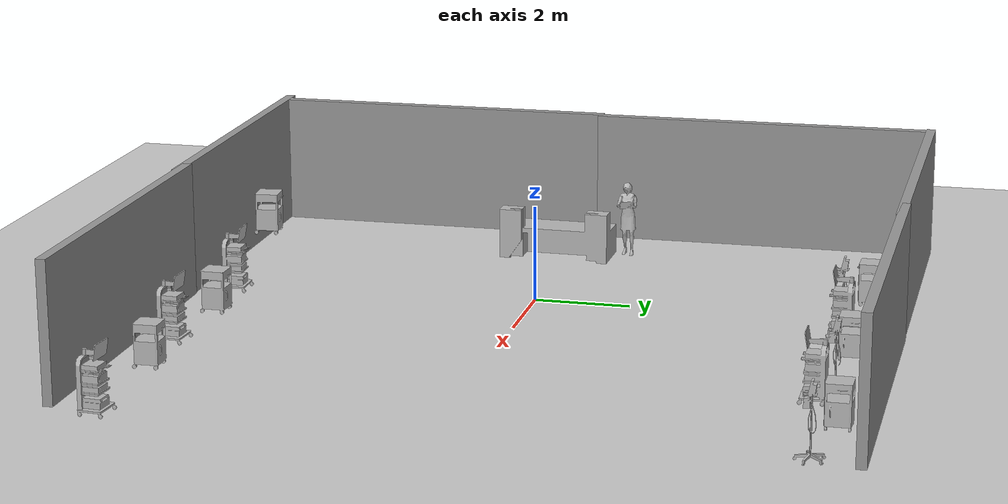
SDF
<sdf version="1.7">
 <world name="default">
  <light name="sun" type="directional">
   <pose>0 0 10 0 -0 0</pose>
   <diffuse>0.8 0.8 0.8 1</diffuse>
   <specular>0.2 0.2 0.2 1</specular>
   <attenuation>
    <range>1000</range>
    <constant>0.9</constant>
    <linear>0.01</linear>
    <quadratic>0.001</quadratic>
   </attenuation>
   <direction>-0.5 0.1 -0.9</direction>
   <spot><inner_angle>0</inner_angle><outer_angle>0</outer_angle><falloff>0</falloff></spot>
  </light>
  <model name="ground_plane">
   <static>1</static>
   <link name="link">
    <collision name="collision">
     <geometry><plane><normal>0 0 1</normal><size>100 100</size></plane></geometry>
     <surface><friction><ode><mu>100</mu><mu2>50</mu2></ode></friction></surface>
    </collision>
    <visual name="visual">
     <cast_shadows>0</cast_shadows>
     <geometry><plane><normal>0 0 1</normal><size>100 100</size></plane></geometry>
     <material>
      <script><uri>file://media/materials/scripts/gazebo.material</uri><name>Gazebo/Grey</name></script>
     </material>
    </visual>
   </link>
  </model>
  <gravity>0 0 -9.8</gravity>
  <magnetic_field>6e-06 2.3e-05 -4.2e-05</magnetic_field>
  <atmosphere type="adiabatic"/>
  <physics type="ode">
   <max_step_size>0.001</max_step_size>
   <real_time_factor>1</real_time_factor>
   <real_time_update_rate>1000</real_time_update_rate>
  </physics>
  <scene><ambient>0.4 0.4 0.4 1</ambient><background>0.7 0.7 0.7 1</background><shadows>1</shadows></scene>
  <audio><device>default</device></audio>
  <spherical_coordinates>
   <surface_model>EARTH_WGS84</surface_model>
   <latitude_deg>0</latitude_deg>
   <longitude_deg>0</longitude_deg>
   <elevation>0</elevation>
   <heading_deg>0</heading_deg>
  </spherical_coordinates>
  <model name="grey_wall">
   <static>1</static>
   <link name="link">
    <pose>0 0 1.4 0 -0 0</pose>
    <collision name="collision"><geometry><box><size>7.5 0.2 2.8</size></box></geometry></collision>
    <visual name="visual">
     <cast_shadows>0</cast_shadows>
     <geometry><box><size>7.5 0.2 2.8</size></box></geometry>
     <material>
      <script>
       <uri>model://grey_wall/materials/scripts</uri>
       <uri>model://grey_wall/materials/textures</uri>
       <name>vrc/grey_wall</name>
      </script>
     </material>
    </visual>
   </link>
   <pose>-1.82853 7.64203 0 0 -0 0</pose>
  </model>
  <model name="grey_wall_clone">
   <static>1</static>
   <link name="link">
    <pose>0 0 1.4 0 -0 0</pose>
    <collision name="collision"><geometry><box><size>7.5 0.2 2.8</size></box></geometry></collision>
    <visual name="visual">
     <cast_shadows>0</cast_shadows>
     <geometry><box><size>7.5 0.2 2.8</size></box></geometry>
     <material>
      <script>
       <uri>model://grey_wall/materials/scripts</uri>
       <uri>model://grey_wall/materials/textures</uri>
       <name>vrc/grey_wall</name>
      </script>
     </material>
    </visual>
   </link>
   <pose>4.78963 7.66435 0 0 -0 0</pose>
  </model>
  <model name="grey_wall_clone_clone">
   <static>1</static>
   <link name="link">
    <pose>0 0 1.4 0 -0 0</pose>
    <collision name="collision"><geometry><box><size>7.5 0.2 2.8</size></box></geometry></collision>
    <visual name="visual">
     <cast_shadows>0</cast_shadows>
     <geometry><box><size>7.5 0.2 2.8</size></box></geometry>
     <material>
      <script>
       <uri>model://grey_wall/materials/scripts</uri>
       <uri>model://grey_wall/materials/textures</uri>
       <name>vrc/grey_wall</name>
      </script>
     </material>
    </visual>
   </link>
   <pose>4.87125 -7.15201 0 0 -0 0</pose>
  </model>
  <model name="grey_wall_clone_clone_clone">
   <static>1</static>
   <link name="link">
    <pose>0 0 1.4 0 -0 0</pose>
    <collision name="collision"><geometry><box><size>7.5 0.2 2.8</size></box></geometry></collision>
    <visual name="visual">
     <cast_shadows>0</cast_shadows>
     <geometry><box><size>7.5 0.2 2.8</size></box></geometry>
     <material>
      <script>
       <uri>model://grey_wall/materials/scripts</uri>
       <uri>model://grey_wall/materials/textures</uri>
       <name>vrc/grey_wall</name>
      </script>
     </material>
    </visual>
   </link>
   <pose>-2.06223 -7.18553 0 0 -0 0</pose>
  </model>
  <model name="grey_wall_clone_clone_clone_0">
   <static>1</static>
   <link name="link">
    <pose>0 0 1.4 0 -0 0</pose>
    <collision name="collision"><geometry><box><size>7.5 0.2 2.8</size></box></geometry></collision>
    <visual name="visual">
     <cast_shadows>0</cast_shadows>
     <geometry><box><size>7.5 0.2 2.8</size></box></geometry>
     <material>
      <script>
       <uri>model://grey_wall/materials/scripts</uri>
       <uri>model://grey_wall/materials/textures</uri>
       <name>vrc/grey_wall</name>
      </script>
     </material>
    </visual>
   </link>
   <pose>-5.38363 3.97999 0 0 -0 1.57536</pose>
  </model>
  <model name="grey_wall_clone_clone_clone_0_clone">
   <static>1</static>
   <link name="link">
    <pose>0 0 1.4 0 -0 0</pose>
    <collision name="collision"><geometry><box><size>7.5 0.2 2.8</size></box></geometry></collision>
    <visual name="visual">
     <cast_shadows>0</cast_shadows>
     <geometry><box><size>7.5 0.2 2.8</size></box></geometry>
     <material>
      <script>
       <uri>model://grey_wall/materials/scripts</uri>
       <uri>model://grey_wall/materials/textures</uri>
       <name>vrc/grey_wall</name>
      </script>
     </material>
    </visual>
   </link>
   <pose>-5.46152 -3.41995 0 0 -0 1.57536</pose>
  </model>
  <model name="InstrumentCart1">
   <static>1</static>
   <link name="body">
    <visual name="visual">
     <geometry><mesh><uri>model://InstrumentCart1/meshes/InstrumentCart1.obj</uri></mesh></geometry>
    </visual>
    <collision name="collision">
     <geometry><mesh><uri>model://InstrumentCart1/meshes/InstrumentCart1.obj</uri></mesh></geometry>
    </collision>
   </link>
   <pose>0.969837 6.47474 0 0 -0 0</pose>
  </model>
  <model name="BloodPressureMonitor">
   <static>1</static>
   <link name="body">
    <visual name="visual">
     <geometry><mesh><uri>model://BloodPressureMonitor/meshes/BloodPressureMonitor.obj</uri></mesh></geometry>
    </visual>
    <collision name="collision">
     <geometry><mesh><uri>model://BloodPressureMonitor/meshes/BloodPressureMonitor_Col.obj</uri></mesh></geometry>
    </collision>
   </link>
   <pose>0.441696 6.45251 0 0 -0 0</pose>
  </model>
  <model name="BedsideTable">
   <link name="body">
    <pose>0 0 0 0 0 -1.5708</pose>
    <visual name="visual">
     <geometry><mesh><uri>model://BedsideTable/meshes/BedsideTable.obj</uri></mesh></geometry>
    </visual>
    <collision name="collision">
     <geometry><mesh><uri>model://BedsideTable/meshes/BedsideTable_Col.obj</uri></mesh></geometry>
    </collision>
    <inertial>
     <inertia><ixx>1</ixx><ixy>0</ixy><ixz>0</ixz><iyy>1</iyy><iyz>0</iyz><izz>1</izz></inertia>
     <mass>1</mass>
    </inertial>
   </link>
   <pose>-1.34192 6.84217 0.00018 -1e-06 0 -1.58798</pose>
  </model>
  <model name="BedsideTable_0">
   <link name="body">
    <pose>0 0 0 0 0 -1.5708</pose>
    <visual name="visual">
     <geometry><mesh><uri>model://BedsideTable/meshes/BedsideTable.obj</uri></mesh></geometry>
    </visual>
    <collision name="collision">
     <geometry><mesh><uri>model://BedsideTable/meshes/BedsideTable_Col.obj</uri></mesh></geometry>
    </collision>
    <inertial>
     <inertia><ixx>1</ixx><ixy>0</ixy><ixz>0</ixz><iyy>1</iyy><iyz>0</iyz><izz>1</izz></inertia>
     <mass>1</mass>
    </inertial>
   </link>
   <pose>-1.2346 -6.21061 0.771029 -1e-06 -0 1.66603</pose>
  </model>
  <model name="BedsideTable_1">
   <link name="body">
    <pose>0 0 0 0 0 -1.5708</pose>
    <visual name="visual">
     <geometry><mesh><uri>model://BedsideTable/meshes/BedsideTable.obj</uri></mesh></geometry>
    </visual>
    <collision name="collision">
     <geometry><mesh><uri>model://BedsideTable/meshes/BedsideTable_Col.obj</uri></mesh></geometry>
    </collision>
    <inertial>
     <inertia><ixx>1</ixx><ixy>0</ixy><ixz>0</ixz><iyy>1</iyy><iyz>0</iyz><izz>1</izz></inertia>
     <mass>1</mass>
    </inertial>
   </link>
   <pose>2.20702 -6.20238 0.00018 0 -0 1.55128</pose>
  </model>
  <model name="BedsideTable_2">
   <link name="body">
    <pose>0 0 0 0 0 -1.5708</pose>
    <visual name="visual">
     <geometry><mesh><uri>model://BedsideTable/meshes/BedsideTable.obj</uri></mesh></geometry>
    </visual>
    <collision name="collision">
     <geometry><mesh><uri>model://BedsideTable/meshes/BedsideTable_Col.obj</uri></mesh></geometry>
    </collision>
    <inertial>
     <inertia><ixx>1</ixx><ixy>0</ixy><ixz>0</ixz><iyy>1</iyy><iyz>0</iyz><izz>1</izz></inertia>
     <mass>1</mass>
    </inertial>
   </link>
   <pose>5.94032 -6.20366 0.00018 0 -0 1.59867</pose>
  </model>
  <model name="BedsideTable_3">
   <link name="body">
    <pose>0 0 0 0 0 -1.5708</pose>
    <visual name="visual">
     <geometry><mesh><uri>model://BedsideTable/meshes/BedsideTable.obj</uri></mesh></geometry>
    </visual>
    <collision name="collision">
     <geometry><mesh><uri>model://BedsideTable/meshes/BedsideTable_Col.obj</uri></mesh></geometry>
    </collision>
    <inertial>
     <inertia><ixx>1</ixx><ixy>0</ixy><ixz>0</ixz><iyy>1</iyy><iyz>0</iyz><izz>1</izz></inertia>
     <mass>1</mass>
    </inertial>
   </link>
   <pose>6.49329 7.0524 0.00018 -1e-06 0 0</pose>
  </model>
  <model name="BedsideTable_4">
   <link name="body">
    <pose>0 0 0 0 0 -1.5708</pose>
    <visual name="visual">
     <geometry><mesh><uri>model://BedsideTable/meshes/BedsideTable.obj</uri></mesh></geometry>
    </visual>
    <collision name="collision">
     <geometry><mesh><uri>model://BedsideTable/meshes/BedsideTable_Col.obj</uri></mesh></geometry>
    </collision>
    <inertial>
     <inertia><ixx>1</ixx><ixy>0</ixy><ixz>0</ixz><iyy>1</iyy><iyz>0</iyz><izz>1</izz></inertia>
     <mass>1</mass>
    </inertial>
   </link>
   <pose>2.42591 6.84806 0.00018 1e-06 -0 0</pose>
  </model>
  <model name="BloodPressureMonitor_0">
   <static>1</static>
   <link name="body">
    <visual name="visual">
     <geometry><mesh><uri>model://BloodPressureMonitor/meshes/BloodPressureMonitor.obj</uri></mesh></geometry>
    </visual>
    <collision name="collision">
     <geometry><mesh><uri>model://BloodPressureMonitor/meshes/BloodPressureMonitor_Col.obj</uri></mesh></geometry>
    </collision>
   </link>
   <pose>4.52073 6.75827 0 0 -0 0</pose>
  </model>
  <model name="InstrumentCart1_clone">
   <static>1</static>
   <link name="body">
    <visual name="visual">
     <geometry><mesh><uri>model://InstrumentCart1/meshes/InstrumentCart1.obj</uri></mesh></geometry>
    </visual>
    <collision name="collision">
     <geometry><mesh><uri>model://InstrumentCart1/meshes/InstrumentCart1.obj</uri></mesh></geometry>
    </collision>
   </link>
   <pose>5.12643 6.43548 0 0 -0 0</pose>
  </model>
  <model name="BloodPressureMonitor_1">
   <static>1</static>
   <link name="body">
    <visual name="visual">
     <geometry><mesh><uri>model://BloodPressureMonitor/meshes/BloodPressureMonitor.obj</uri></mesh></geometry>
    </visual>
    <collision name="collision">
     <geometry><mesh><uri>model://BloodPressureMonitor/meshes/BloodPressureMonitor_Col.obj</uri></mesh></geometry>
    </collision>
   </link>
   <pose>8.29605 6.75999 0 0 -0 0</pose>
  </model>
  <model name="Nurse">
   <static>1</static>
   <link name="body">
    <visual name="visual"><geometry><mesh><uri>model://Nurse/meshes/Nurse.obj</uri></mesh></geometry></visual>
    <collision name="collision">
     <geometry><mesh><uri>model://Nurse/meshes/Nurse_Col.obj</uri></mesh></geometry>
    </collision>
   </link>
   <pose>-4.01719 1.18659 0 0 -0 0</pose>
  </model>
  <model name="InstrumentCart1_1">
   <static>1</static>
   <link name="body">
    <visual name="visual">
     <geometry><mesh><uri>model://InstrumentCart1/meshes/InstrumentCart1.obj</uri></mesh></geometry>
    </visual>
    <collision name="collision">
     <geometry><mesh><uri>model://InstrumentCart1/meshes/InstrumentCart1.obj</uri></mesh></geometry>
    </collision>
   </link>
   <pose>0.801968 -6.25865 0.056221 0 0 -3.10458</pose>
  </model>
  <model name="InstrumentCart1_2">
   <static>1</static>
   <link name="body">
    <visual name="visual">
     <geometry><mesh><uri>model://InstrumentCart1/meshes/InstrumentCart1.obj</uri></mesh></geometry>
    </visual>
    <collision name="collision">
     <geometry><mesh><uri>model://InstrumentCart1/meshes/InstrumentCart1.obj</uri></mesh></geometry>
    </collision>
   </link>
   <pose>4.71007 -6.17826 0.134455 0 -0 3.08655</pose>
  </model>
  <model name="InstrumentCart1_3">
   <static>1</static>
   <link name="body">
    <visual name="visual">
     <geometry><mesh><uri>model://InstrumentCart1/meshes/InstrumentCart1.obj</uri></mesh></geometry>
    </visual>
    <collision name="collision">
     <geometry><mesh><uri>model://InstrumentCart1/meshes/InstrumentCart1.obj</uri></mesh></geometry>
    </collision>
   </link>
   <pose>8.74866 -6.15198 0 0 -0 3.0504</pose>
  </model>
  <model name="MainTable">
   <static>1</static>
   <link name="body">
    <visual name="visual">
     <geometry><mesh><uri>model://MainTable/meshes/MainTable.obj</uri></mesh></geometry>
    </visual>
    <collision name="collision">
     <geometry><mesh><uri>model://MainTable/meshes/MainTable.obj</uri></mesh></geometry>
    </collision>
   </link>
   <pose>-3.26162 -0.238059 0 0 -0 1.555</pose>
  </model>
 </world>
</sdf>
